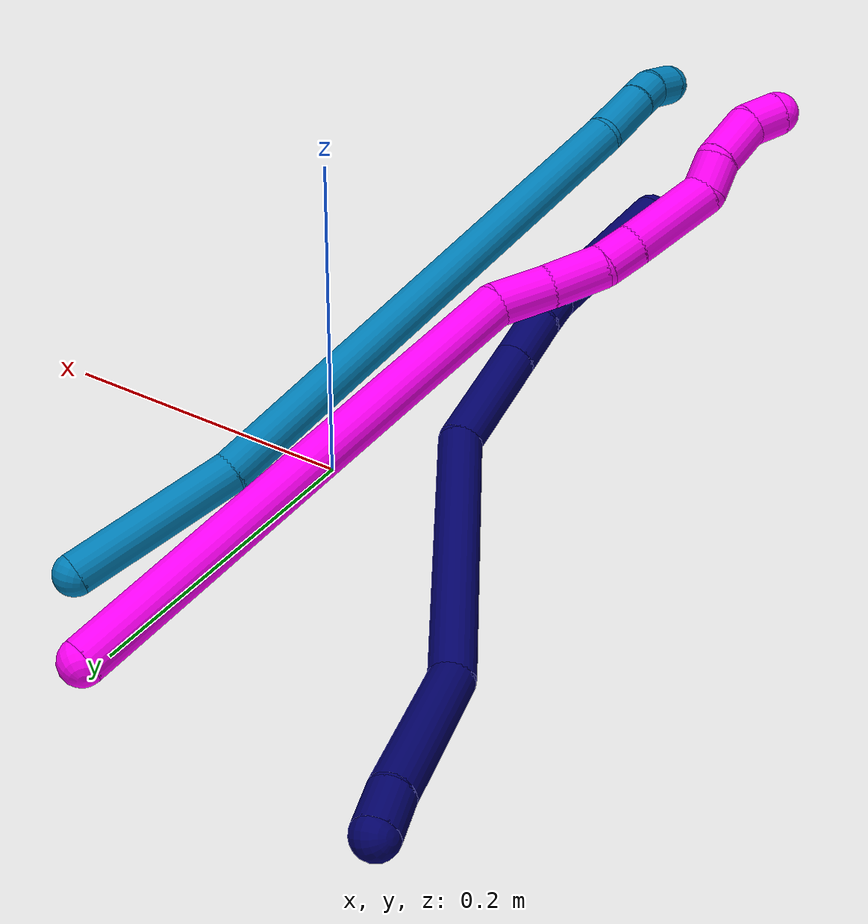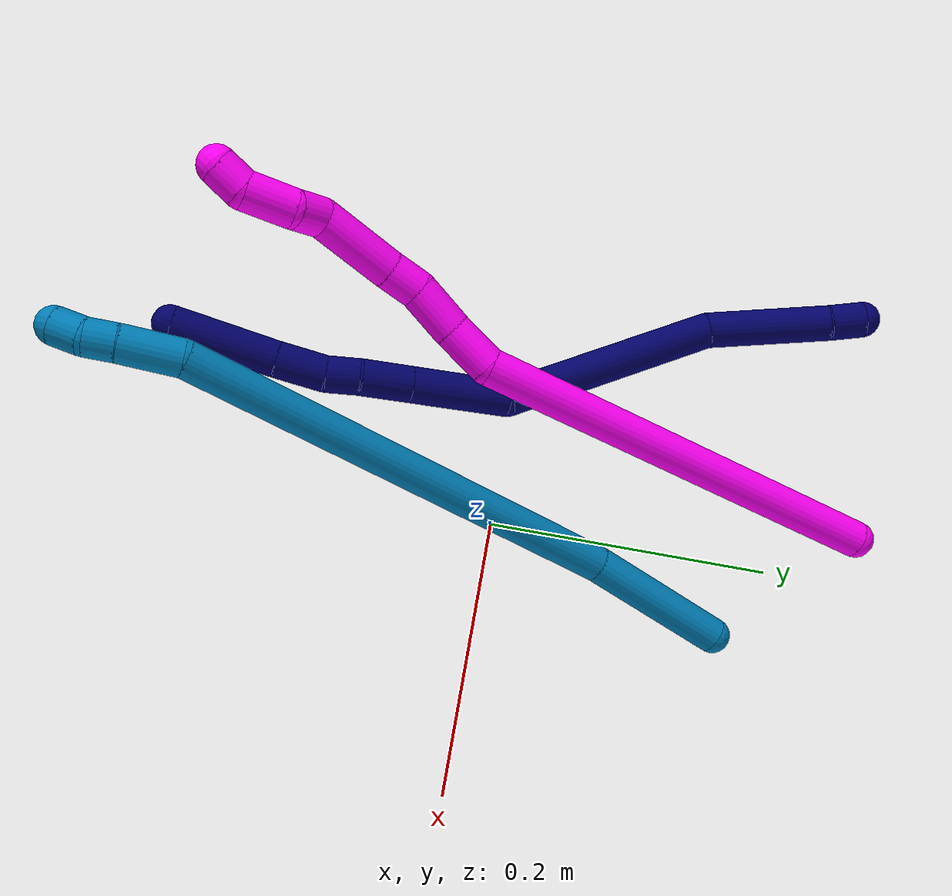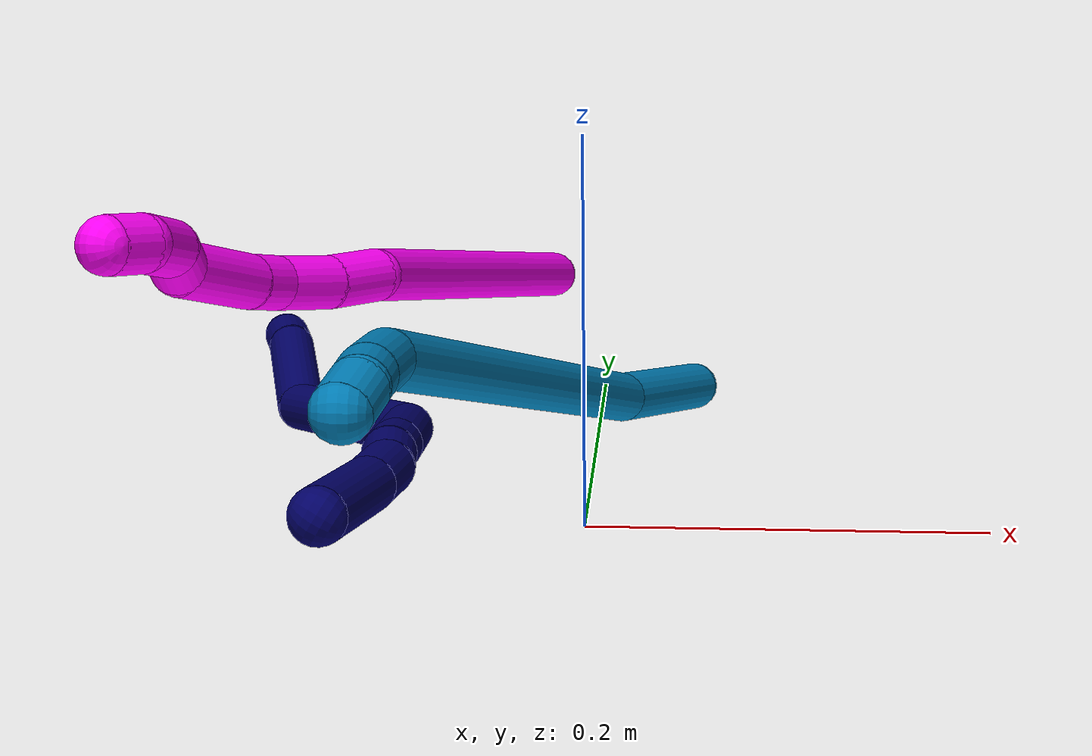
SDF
<sdf version="1.7">
 <world name="default">
  <model name="7">
   <static>0</static>
   <link name="7">
    <collision name="collision-cylinder-e_1_1_4">
     <pose>-0.002572 -0.01116 -0.00393 1.90938 -0.214044 -0.301165</pose>
     <geometry><cylinder><radius>0.0125</radius><length>0.024216</length></cylinder></geometry>
     <surface>
      <friction><ode><mu>1.16</mu><mu2>1.16</mu2><slip1>0</slip1><slip2>0</slip2></ode></friction>
      <contact><ode><kp>1e+06</kp><kd>1</kd><max_vel>0</max_vel><min_depth>0.001</min_depth></ode></contact>
     </surface>
    </collision>
    <visual name="visual-cylinder-e_1_1_4">
     <pose>-0.002572 -0.01116 -0.00393 1.90938 -0.214044 -0.301165</pose>
     <geometry><cylinder><radius>0.0125</radius><length>0.024216</length></cylinder></geometry>
     <material><ambient>0.003922 0 0.403922 1</ambient></material>
    </visual>
    <collision name="collision-cylinder-e_2_4_5">
     <pose>-0.019803 -0.06017 -0.022692 1.94428 -0.346087 -0.501665</pose>
     <geometry><cylinder><radius>0.0125</radius><length>0.086431</length></cylinder></geometry>
     <surface>
      <friction><ode><mu>1.16</mu><mu2>1.16</mu2><slip1>0</slip1><slip2>0</slip2></ode></friction>
      <contact><ode><kp>1e+06</kp><kd>1</kd><max_vel>0</max_vel><min_depth>0.001</min_depth></ode></contact>
     </surface>
    </collision>
    <visual name="visual-cylinder-e_2_4_5">
     <pose>-0.019803 -0.06017 -0.022692 1.94428 -0.346087 -0.501665</pose>
     <geometry><cylinder><radius>0.0125</radius><length>0.086431</length></cylinder></geometry>
     <material><ambient>0.003922 0 0.403922 1</ambient></material>
    </visual>
    <collision name="collision-cylinder-e_3_5_6">
     <pose>-0.027548 -0.170156 -0.068357 1.97471 0.087918 0.133077</pose>
     <geometry><cylinder><radius>0.0125</radius><length>0.157505</length></cylinder></geometry>
     <surface>
      <friction><ode><mu>1.16</mu><mu2>1.16</mu2><slip1>0</slip1><slip2>0</slip2></ode></friction>
      <contact><ode><kp>1e+06</kp><kd>1</kd><max_vel>0</max_vel><min_depth>0.001</min_depth></ode></contact>
     </surface>
    </collision>
    <visual name="visual-cylinder-e_3_5_6">
     <pose>-0.027548 -0.170156 -0.068357 1.97471 0.087918 0.133077</pose>
     <geometry><cylinder><radius>0.0125</radius><length>0.157505</length></cylinder></geometry>
     <material><ambient>0.003922 0 0.403922 1</ambient></material>
    </visual>
    <collision name="collision-cylinder-e_4_6_7">
     <pose>-0.026699 -0.275946 -0.100274 1.60306 -0.178251 -0.184064</pose>
     <geometry><cylinder><radius>0.0125</radius><length>0.068427</length></cylinder></geometry>
     <surface>
      <friction><ode><mu>1.16</mu><mu2>1.16</mu2><slip1>0</slip1><slip2>0</slip2></ode></friction>
      <contact><ode><kp>1e+06</kp><kd>1</kd><max_vel>0</max_vel><min_depth>0.001</min_depth></ode></contact>
     </surface>
    </collision>
    <visual name="visual-cylinder-e_4_6_7">
     <pose>-0.026699 -0.275946 -0.100274 1.60306 -0.178251 -0.184064</pose>
     <geometry><cylinder><radius>0.0125</radius><length>0.068427</length></cylinder></geometry>
     <material><ambient>0.003922 0 0.403922 1</ambient></material>
    </visual>
    <collision name="collision-cylinder-e_5_7_8">
     <pose>-0.035696 -0.326818 -0.101801 1.59636 -0.168528 -0.17287</pose>
     <geometry><cylinder><radius>0.0125</radius><length>0.034942</length></cylinder></geometry>
     <surface>
      <friction><ode><mu>1.16</mu><mu2>1.16</mu2><slip1>0</slip1><slip2>0</slip2></ode></friction>
      <contact><ode><kp>1e+06</kp><kd>1</kd><max_vel>0</max_vel><min_depth>0.001</min_depth></ode></contact>
     </surface>
    </collision>
    <visual name="visual-cylinder-e_5_7_8">
     <pose>-0.035696 -0.326818 -0.101801 1.59636 -0.168528 -0.17287</pose>
     <geometry><cylinder><radius>0.0125</radius><length>0.034942</length></cylinder></geometry>
     <material><ambient>0.003922 0 0.403922 1</ambient></material>
    </visual>
    <collision name="collision-cylinder-e_6_8_9">
     <pose>-0.041827 -0.354926 -0.103949 1.72633 -0.28251 -0.329462</pose>
     <geometry><cylinder><radius>0.0125</radius><length>0.022958</length></cylinder></geometry>
     <surface>
      <friction><ode><mu>1.16</mu><mu2>1.16</mu2><slip1>0</slip1><slip2>0</slip2></ode></friction>
      <contact><ode><kp>1e+06</kp><kd>1</kd><max_vel>0</max_vel><min_depth>0.001</min_depth></ode></contact>
     </surface>
    </collision>
    <visual name="visual-cylinder-e_6_8_9">
     <pose>-0.041827 -0.354926 -0.103949 1.72633 -0.28251 -0.329462</pose>
     <geometry><cylinder><radius>0.0125</radius><length>0.022958</length></cylinder></geometry>
     <material><ambient>0.003922 0 0.403922 1</ambient></material>
    </visual>
    <collision name="collision-cylinder-e_7_9_10">
     <pose>-0.050817 -0.381855 -0.104841 1.51998 -0.346048 -0.32921</pose>
     <geometry><cylinder><radius>0.0125</radius><length>0.034142</length></cylinder></geometry>
     <surface>
      <friction><ode><mu>1.16</mu><mu2>1.16</mu2><slip1>0</slip1><slip2>0</slip2></ode></friction>
      <contact><ode><kp>1e+06</kp><kd>1</kd><max_vel>0</max_vel><min_depth>0.001</min_depth></ode></contact>
     </surface>
    </collision>
    <visual name="visual-cylinder-e_7_9_10">
     <pose>-0.050817 -0.381855 -0.104841 1.51998 -0.346048 -0.32921</pose>
     <geometry><cylinder><radius>0.0125</radius><length>0.034142</length></cylinder></geometry>
     <material><ambient>0.003922 0 0.403922 1</ambient></material>
    </visual>
    <collision name="collision-cylinder-e_8_10_2">
     <pose>-0.067679 -0.431626 -0.100381 1.46319 -0.315441 -0.283656</pose>
     <geometry><cylinder><radius>0.0125</radius><length>0.07138</length></cylinder></geometry>
     <surface>
      <friction><ode><mu>1.16</mu><mu2>1.16</mu2><slip1>0</slip1><slip2>0</slip2></ode></friction>
      <contact><ode><kp>1e+06</kp><kd>1</kd><max_vel>0</max_vel><min_depth>0.001</min_depth></ode></contact>
     </surface>
    </collision>
    <visual name="visual-cylinder-e_8_10_2">
     <pose>-0.067679 -0.431626 -0.100381 1.46319 -0.315441 -0.283656</pose>
     <geometry><cylinder><radius>0.0125</radius><length>0.07138</length></cylinder></geometry>
     <material><ambient>0.003922 0 0.403922 1</ambient></material>
    </visual>
    <collision name="collision-sphere-2">
     <pose>-0.078751 -0.465359 -0.096737 0 -0 0</pose>
     <geometry><sphere><radius>0.0125</radius></sphere></geometry>
     <surface>
      <friction><ode><mu>1.16</mu><mu2>1.16</mu2><slip1>0</slip1><slip2>0</slip2></ode></friction>
      <contact><ode><kp>1e+06</kp><kd>1</kd><max_vel>0</max_vel><min_depth>0.001</min_depth></ode></contact>
     </surface>
    </collision>
    <visual name="visual-sphere-2">
     <pose>-0.078751 -0.465359 -0.096737 0 -0 0</pose>
     <geometry><sphere><radius>0.0125</radius></sphere></geometry>
     <material><ambient>0.003922 0 0.403922 1</ambient></material>
    </visual>
    <collision name="collision-sphere-10">
     <pose>-0.056607 -0.397894 -0.104025 0 -0 0</pose>
     <geometry><sphere><radius>0.0125</radius></sphere></geometry>
     <surface>
      <friction><ode><mu>1.16</mu><mu2>1.16</mu2><slip1>0</slip1><slip2>0</slip2></ode></friction>
      <contact><ode><kp>1e+06</kp><kd>1</kd><max_vel>0</max_vel><min_depth>0.001</min_depth></ode></contact>
     </surface>
    </collision>
    <visual name="visual-sphere-10">
     <pose>-0.056607 -0.397894 -0.104025 0 -0 0</pose>
     <geometry><sphere><radius>0.0125</radius></sphere></geometry>
     <material><ambient>0.003922 0 0.403922 1</ambient></material>
    </visual>
    <collision name="collision-sphere-9">
     <pose>-0.045027 -0.365817 -0.105656 0 -0 0</pose>
     <geometry><sphere><radius>0.0125</radius></sphere></geometry>
     <surface>
      <friction><ode><mu>1.16</mu><mu2>1.16</mu2><slip1>0</slip1><slip2>0</slip2></ode></friction>
      <contact><ode><kp>1e+06</kp><kd>1</kd><max_vel>0</max_vel><min_depth>0.001</min_depth></ode></contact>
     </surface>
    </collision>
    <visual name="visual-sphere-9">
     <pose>-0.045027 -0.365817 -0.105656 0 -0 0</pose>
     <geometry><sphere><radius>0.0125</radius></sphere></geometry>
     <material><ambient>0.003922 0 0.403922 1</ambient></material>
    </visual>
    <collision name="collision-sphere-4">
     <pose>-0.005144 -0.022319 -0.00786 0 -0 0</pose>
     <geometry><sphere><radius>0.0125</radius></sphere></geometry>
     <surface>
      <friction><ode><mu>1.16</mu><mu2>1.16</mu2><slip1>0</slip1><slip2>0</slip2></ode></friction>
      <contact><ode><kp>1e+06</kp><kd>1</kd><max_vel>0</max_vel><min_depth>0.001</min_depth></ode></contact>
     </surface>
    </collision>
    <visual name="visual-sphere-4">
     <pose>-0.005144 -0.022319 -0.00786 0 -0 0</pose>
     <geometry><sphere><radius>0.0125</radius></sphere></geometry>
     <material><ambient>0.003922 0 0.403922 1</ambient></material>
    </visual>
    <collision name="collision-sphere-1">
     <geometry><sphere><radius>0.0125</radius></sphere></geometry>
     <surface>
      <friction><ode><mu>1.16</mu><mu2>1.16</mu2><slip1>0</slip1><slip2>0</slip2></ode></friction>
      <contact><ode><kp>1e+06</kp><kd>1</kd><max_vel>0</max_vel><min_depth>0.001</min_depth></ode></contact>
     </surface>
    </collision>
    <visual name="visual-sphere-1">
     <geometry><sphere><radius>0.0125</radius></sphere></geometry>
     <material><ambient>0.003922 0 0.403922 1</ambient></material>
    </visual>
    <collision name="collision-sphere-8">
     <pose>-0.038627 -0.344036 -0.102241 0 -0 0</pose>
     <geometry><sphere><radius>0.0125</radius></sphere></geometry>
     <surface>
      <friction><ode><mu>1.16</mu><mu2>1.16</mu2><slip1>0</slip1><slip2>0</slip2></ode></friction>
      <contact><ode><kp>1e+06</kp><kd>1</kd><max_vel>0</max_vel><min_depth>0.001</min_depth></ode></contact>
     </surface>
    </collision>
    <visual name="visual-sphere-8">
     <pose>-0.038627 -0.344036 -0.102241 0 -0 0</pose>
     <geometry><sphere><radius>0.0125</radius></sphere></geometry>
     <material><ambient>0.003922 0 0.403922 1</ambient></material>
    </visual>
    <collision name="collision-sphere-5">
     <pose>-0.034463 -0.098021 -0.037525 0 -0 0</pose>
     <geometry><sphere><radius>0.0125</radius></sphere></geometry>
     <surface>
      <friction><ode><mu>1.16</mu><mu2>1.16</mu2><slip1>0</slip1><slip2>0</slip2></ode></friction>
      <contact><ode><kp>1e+06</kp><kd>1</kd><max_vel>0</max_vel><min_depth>0.001</min_depth></ode></contact>
     </surface>
    </collision>
    <visual name="visual-sphere-5">
     <pose>-0.034463 -0.098021 -0.037525 0 -0 0</pose>
     <geometry><sphere><radius>0.0125</radius></sphere></geometry>
     <material><ambient>0.003922 0 0.403922 1</ambient></material>
    </visual>
    <collision name="collision-sphere-6">
     <pose>-0.020633 -0.242292 -0.099188 0 -0 0</pose>
     <geometry><sphere><radius>0.0125</radius></sphere></geometry>
     <surface>
      <friction><ode><mu>1.16</mu><mu2>1.16</mu2><slip1>0</slip1><slip2>0</slip2></ode></friction>
      <contact><ode><kp>1e+06</kp><kd>1</kd><max_vel>0</max_vel><min_depth>0.001</min_depth></ode></contact>
     </surface>
    </collision>
    <visual name="visual-sphere-6">
     <pose>-0.020633 -0.242292 -0.099188 0 -0 0</pose>
     <geometry><sphere><radius>0.0125</radius></sphere></geometry>
     <material><ambient>0.003922 0 0.403922 1</ambient></material>
    </visual>
    <collision name="collision-sphere-7">
     <pose>-0.032766 -0.3096 -0.101361 0 -0 0</pose>
     <geometry><sphere><radius>0.0125</radius></sphere></geometry>
     <surface>
      <friction><ode><mu>1.16</mu><mu2>1.16</mu2><slip1>0</slip1><slip2>0</slip2></ode></friction>
      <contact><ode><kp>1e+06</kp><kd>1</kd><max_vel>0</max_vel><min_depth>0.001</min_depth></ode></contact>
     </surface>
    </collision>
    <visual name="visual-sphere-7">
     <pose>-0.032766 -0.3096 -0.101361 0 -0 0</pose>
     <geometry><sphere><radius>0.0125</radius></sphere></geometry>
     <material><ambient>0.003922 0 0.403922 1</ambient></material>
    </visual>
    <inertial>
     <pose>-0.033426 -0.229136 -0.072745 0 -0 0</pose>
     <mass>0.5</mass>
     <inertia>
      <ixx>0.00044</ixx>
      <ixy>0</ixy>
      <ixz>0</ixz>
      <iyy>-0.000165</iyy>
      <iyz>0</iyz>
      <izz>0.000429</izz>
     </inertia>
    </inertial>
   </link>
   <pose>-0.189393 0.235103 0.015035 -0.700652 -0.858649 0.696439</pose>
  </model>
  <model name="9">
   <static>0</static>
   <link name="9">
    <collision name="collision-cylinder-e_1_1_4">
     <pose>-0.028452 -0.038121 0.019203 1.10416 -0.587931 -0.368718</pose>
     <geometry><cylinder><radius>0.0125</radius><length>0.102595</length></cylinder></geometry>
     <surface>
      <friction><ode><mu>1.16</mu><mu2>1.16</mu2><slip1>0</slip1><slip2>0</slip2></ode></friction>
      <contact><ode><kp>1e+06</kp><kd>1</kd><max_vel>0</max_vel><min_depth>0.001</min_depth></ode></contact>
     </surface>
    </collision>
    <visual name="visual-cylinder-e_1_1_4">
     <pose>-0.028452 -0.038121 0.019203 1.10416 -0.587931 -0.368718</pose>
     <geometry><cylinder><radius>0.0125</radius><length>0.102595</length></cylinder></geometry>
     <material><ambient>0 0.490196 0.709804 1</ambient></material>
    </visual>
    <collision name="collision-cylinder-e_2_4_5">
     <pose>-0.132716 -0.20806 0.082506 1.24795 -0.499314 -0.363086</pose>
     <geometry><cylinder><radius>0.0125</radius><length>0.31666</length></cylinder></geometry>
     <surface>
      <friction><ode><mu>1.16</mu><mu2>1.16</mu2><slip1>0</slip1><slip2>0</slip2></ode></friction>
      <contact><ode><kp>1e+06</kp><kd>1</kd><max_vel>0</max_vel><min_depth>0.001</min_depth></ode></contact>
     </surface>
    </collision>
    <visual name="visual-cylinder-e_2_4_5">
     <pose>-0.132716 -0.20806 0.082506 1.24795 -0.499314 -0.363086</pose>
     <geometry><cylinder><radius>0.0125</radius><length>0.31666</length></cylinder></geometry>
     <material><ambient>0 0.490196 0.709804 1</ambient></material>
    </visual>
    <collision name="collision-cylinder-e_3_5_6">
     <pose>-0.222083 -0.354976 0.127815 1.49095 -0.730034 -0.678308</pose>
     <geometry><cylinder><radius>0.0125</radius><length>0.040652</length></cylinder></geometry>
     <surface>
      <friction><ode><mu>1.16</mu><mu2>1.16</mu2><slip1>0</slip1><slip2>0</slip2></ode></friction>
      <contact><ode><kp>1e+06</kp><kd>1</kd><max_vel>0</max_vel><min_depth>0.001</min_depth></ode></contact>
     </surface>
    </collision>
    <visual name="visual-cylinder-e_3_5_6">
     <pose>-0.222083 -0.354976 0.127815 1.49095 -0.730034 -0.678308</pose>
     <geometry><cylinder><radius>0.0125</radius><length>0.040652</length></cylinder></geometry>
     <material><ambient>0 0.490196 0.709804 1</ambient></material>
    </visual>
    <collision name="collision-cylinder-e_4_6_7">
     <pose>-0.242838 -0.37702 0.129262 1.53636 -0.803021 -0.778539</pose>
     <geometry><cylinder><radius>0.0125</radius><length>0.020013</length></cylinder></geometry>
     <surface>
      <friction><ode><mu>1.16</mu><mu2>1.16</mu2><slip1>0</slip1><slip2>0</slip2></ode></friction>
      <contact><ode><kp>1e+06</kp><kd>1</kd><max_vel>0</max_vel><min_depth>0.001</min_depth></ode></contact>
     </surface>
    </collision>
    <visual name="visual-cylinder-e_4_6_7">
     <pose>-0.242838 -0.37702 0.129262 1.53636 -0.803021 -0.778539</pose>
     <geometry><cylinder><radius>0.0125</radius><length>0.020013</length></cylinder></geometry>
     <material><ambient>0 0.490196 0.709804 1</ambient></material>
    </visual>
    <collision name="collision-cylinder-e_5_7_2">
     <pose>-0.258669 -0.388653 0.131577 1.154 -1.03484 -0.70955</pose>
     <geometry><cylinder><radius>0.0125</radius><length>0.020079</length></cylinder></geometry>
     <surface>
      <friction><ode><mu>1.16</mu><mu2>1.16</mu2><slip1>0</slip1><slip2>0</slip2></ode></friction>
      <contact><ode><kp>1e+06</kp><kd>1</kd><max_vel>0</max_vel><min_depth>0.001</min_depth></ode></contact>
     </surface>
    </collision>
    <visual name="visual-cylinder-e_5_7_2">
     <pose>-0.258669 -0.388653 0.131577 1.154 -1.03484 -0.70955</pose>
     <geometry><cylinder><radius>0.0125</radius><length>0.020079</length></cylinder></geometry>
     <material><ambient>0 0.490196 0.709804 1</ambient></material>
    </visual>
    <collision name="collision-sphere-2">
     <pose>-0.267301 -0.393341 0.133652 0 -0 0</pose>
     <geometry><sphere><radius>0.0125</radius></sphere></geometry>
     <surface>
      <friction><ode><mu>1.16</mu><mu2>1.16</mu2><slip1>0</slip1><slip2>0</slip2></ode></friction>
      <contact><ode><kp>1e+06</kp><kd>1</kd><max_vel>0</max_vel><min_depth>0.001</min_depth></ode></contact>
     </surface>
    </collision>
    <visual name="visual-sphere-2">
     <pose>-0.267301 -0.393341 0.133652 0 -0 0</pose>
     <geometry><sphere><radius>0.0125</radius></sphere></geometry>
     <material><ambient>0 0.490196 0.709804 1</ambient></material>
    </visual>
    <collision name="collision-sphere-7">
     <pose>-0.250037 -0.383965 0.129501 0 -0 0</pose>
     <geometry><sphere><radius>0.0125</radius></sphere></geometry>
     <surface>
      <friction><ode><mu>1.16</mu><mu2>1.16</mu2><slip1>0</slip1><slip2>0</slip2></ode></friction>
      <contact><ode><kp>1e+06</kp><kd>1</kd><max_vel>0</max_vel><min_depth>0.001</min_depth></ode></contact>
     </surface>
    </collision>
    <visual name="visual-sphere-7">
     <pose>-0.250037 -0.383965 0.129501 0 -0 0</pose>
     <geometry><sphere><radius>0.0125</radius></sphere></geometry>
     <material><ambient>0 0.490196 0.709804 1</ambient></material>
    </visual>
    <collision name="collision-sphere-6">
     <pose>-0.235638 -0.370074 0.129023 0 -0 0</pose>
     <geometry><sphere><radius>0.0125</radius></sphere></geometry>
     <surface>
      <friction><ode><mu>1.16</mu><mu2>1.16</mu2><slip1>0</slip1><slip2>0</slip2></ode></friction>
      <contact><ode><kp>1e+06</kp><kd>1</kd><max_vel>0</max_vel><min_depth>0.001</min_depth></ode></contact>
     </surface>
    </collision>
    <visual name="visual-sphere-6">
     <pose>-0.235638 -0.370074 0.129023 0 -0 0</pose>
     <geometry><sphere><radius>0.0125</radius></sphere></geometry>
     <material><ambient>0 0.490196 0.709804 1</ambient></material>
    </visual>
    <collision name="collision-sphere-5">
     <pose>-0.208528 -0.339878 0.126607 0 -0 0</pose>
     <geometry><sphere><radius>0.0125</radius></sphere></geometry>
     <surface>
      <friction><ode><mu>1.16</mu><mu2>1.16</mu2><slip1>0</slip1><slip2>0</slip2></ode></friction>
      <contact><ode><kp>1e+06</kp><kd>1</kd><max_vel>0</max_vel><min_depth>0.001</min_depth></ode></contact>
     </surface>
    </collision>
    <visual name="visual-sphere-5">
     <pose>-0.208528 -0.339878 0.126607 0 -0 0</pose>
     <geometry><sphere><radius>0.0125</radius></sphere></geometry>
     <material><ambient>0 0.490196 0.709804 1</ambient></material>
    </visual>
    <collision name="collision-sphere-1">
     <geometry><sphere><radius>0.0125</radius></sphere></geometry>
     <surface>
      <friction><ode><mu>1.16</mu><mu2>1.16</mu2><slip1>0</slip1><slip2>0</slip2></ode></friction>
      <contact><ode><kp>1e+06</kp><kd>1</kd><max_vel>0</max_vel><min_depth>0.001</min_depth></ode></contact>
     </surface>
    </collision>
    <visual name="visual-sphere-1">
     <geometry><sphere><radius>0.0125</radius></sphere></geometry>
     <material><ambient>0 0.490196 0.709804 1</ambient></material>
    </visual>
    <collision name="collision-sphere-4">
     <pose>-0.056903 -0.076241 0.038406 0 -0 0</pose>
     <geometry><sphere><radius>0.0125</radius></sphere></geometry>
     <surface>
      <friction><ode><mu>1.16</mu><mu2>1.16</mu2><slip1>0</slip1><slip2>0</slip2></ode></friction>
      <contact><ode><kp>1e+06</kp><kd>1</kd><max_vel>0</max_vel><min_depth>0.001</min_depth></ode></contact>
     </surface>
    </collision>
    <visual name="visual-sphere-4">
     <pose>-0.056903 -0.076241 0.038406 0 -0 0</pose>
     <geometry><sphere><radius>0.0125</radius></sphere></geometry>
     <material><ambient>0 0.490196 0.709804 1</ambient></material>
    </visual>
    <inertial>
     <pose>-0.128054 -0.19915 0.077043 0 -0 0</pose>
     <mass>0.5</mass>
     <inertia>
      <ixx>0.001378</ixx>
      <ixy>0</ixy>
      <ixz>0</ixz>
      <iyy>0.000386</iyy>
      <iyz>0</iyz>
      <izz>0.003633</izz>
     </inertia>
    </inertial>
   </link>
   <pose>0.050802 0.169793 0.01149 -1.55498 -0.640724 1.58157</pose>
  </model>
  <model name="10">
   <static>0</static>
   <link name="10">
    <collision name="collision-cylinder-e_1_1_4">
     <pose>-0.002345 -0.124272 -0.07312 2.10263 -0.01626 -0.028431</pose>
     <geometry><cylinder><radius>0.0125</radius><length>0.288413</length></cylinder></geometry>
     <surface>
      <friction><ode><mu>1.16</mu><mu2>1.16</mu2><slip1>0</slip1><slip2>0</slip2></ode></friction>
      <contact><ode><kp>1e+06</kp><kd>1</kd><max_vel>0</max_vel><min_depth>0.001</min_depth></ode></contact>
     </surface>
    </collision>
    <visual name="visual-cylinder-e_1_1_4">
     <pose>-0.002345 -0.124272 -0.07312 2.10263 -0.01626 -0.028431</pose>
     <geometry><cylinder><radius>0.0125</radius><length>0.288413</length></cylinder></geometry>
     <material><ambient>1 0 0.964706 1</ambient></material>
    </visual>
    <collision name="collision-cylinder-e_2_4_5">
     <pose>-0.006958 -0.264348 -0.148684 1.72429 -0.140933 -0.164314</pose>
     <geometry><cylinder><radius>0.0125</radius><length>0.032303</length></cylinder></geometry>
     <surface>
      <friction><ode><mu>1.16</mu><mu2>1.16</mu2><slip1>0</slip1><slip2>0</slip2></ode></friction>
      <contact><ode><kp>1e+06</kp><kd>1</kd><max_vel>0</max_vel><min_depth>0.001</min_depth></ode></contact>
     </surface>
    </collision>
    <visual name="visual-cylinder-e_2_4_5">
     <pose>-0.006958 -0.264348 -0.148684 1.72429 -0.140933 -0.164314</pose>
     <geometry><cylinder><radius>0.0125</radius><length>0.032303</length></cylinder></geometry>
     <material><ambient>1 0 0.964706 1</ambient></material>
    </visual>
    <collision name="collision-cylinder-e_3_5_6">
     <pose>-0.009945 -0.296306 -0.152937 1.68223 -0.044128 -0.049339</pose>
     <geometry><cylinder><radius>0.0125</radius><length>0.032542</length></cylinder></geometry>
     <surface>
      <friction><ode><mu>1.16</mu><mu2>1.16</mu2><slip1>0</slip1><slip2>0</slip2></ode></friction>
      <contact><ode><kp>1e+06</kp><kd>1</kd><max_vel>0</max_vel><min_depth>0.001</min_depth></ode></contact>
     </surface>
    </collision>
    <visual name="visual-cylinder-e_3_5_6">
     <pose>-0.009945 -0.296306 -0.152937 1.68223 -0.044128 -0.049339</pose>
     <geometry><cylinder><radius>0.0125</radius><length>0.032542</length></cylinder></geometry>
     <material><ambient>1 0 0.964706 1</ambient></material>
    </visual>
    <collision name="collision-cylinder-e_4_6_7">
     <pose>-0.010629 -0.32284 -0.158775 1.94122 0.003007 0.004394</pose>
     <geometry><cylinder><radius>0.0125</radius><length>0.022271</length></cylinder></geometry>
     <surface>
      <friction><ode><mu>1.16</mu><mu2>1.16</mu2><slip1>0</slip1><slip2>0</slip2></ode></friction>
      <contact><ode><kp>1e+06</kp><kd>1</kd><max_vel>0</max_vel><min_depth>0.001</min_depth></ode></contact>
     </surface>
    </collision>
    <visual name="visual-cylinder-e_4_6_7">
     <pose>-0.010629 -0.32284 -0.158775 1.94122 0.003007 0.004394</pose>
     <geometry><cylinder><radius>0.0125</radius><length>0.022271</length></cylinder></geometry>
     <material><ambient>1 0 0.964706 1</ambient></material>
    </visual>
    <collision name="collision-cylinder-e_5_7_8">
     <pose>-0.008374 -0.357635 -0.171434 1.91046 0.085597 0.120957</pose>
     <geometry><cylinder><radius>0.0125</radius><length>0.051978</length></cylinder></geometry>
     <surface>
      <friction><ode><mu>1.16</mu><mu2>1.16</mu2><slip1>0</slip1><slip2>0</slip2></ode></friction>
      <contact><ode><kp>1e+06</kp><kd>1</kd><max_vel>0</max_vel><min_depth>0.001</min_depth></ode></contact>
     </surface>
    </collision>
    <visual name="visual-cylinder-e_5_7_8">
     <pose>-0.008374 -0.357635 -0.171434 1.91046 0.085597 0.120957</pose>
     <geometry><cylinder><radius>0.0125</radius><length>0.051978</length></cylinder></geometry>
     <material><ambient>1 0 0.964706 1</ambient></material>
    </visual>
    <collision name="collision-cylinder-e_6_8_9">
     <pose>-0.002031 -0.388868 -0.186501 2.32769 0.413932 0.906656</pose>
     <geometry><cylinder><radius>0.0125</radius><length>0.020489</length></cylinder></geometry>
     <surface>
      <friction><ode><mu>1.16</mu><mu2>1.16</mu2><slip1>0</slip1><slip2>0</slip2></ode></friction>
      <contact><ode><kp>1e+06</kp><kd>1</kd><max_vel>0</max_vel><min_depth>0.001</min_depth></ode></contact>
     </surface>
    </collision>
    <visual name="visual-cylinder-e_6_8_9">
     <pose>-0.002031 -0.388868 -0.186501 2.32769 0.413932 0.906656</pose>
     <geometry><cylinder><radius>0.0125</radius><length>0.020489</length></cylinder></geometry>
     <material><ambient>1 0 0.964706 1</ambient></material>
    </visual>
    <collision name="collision-cylinder-e_7_9_10">
     <pose>0.002828 -0.408555 -0.202381 2.20366 0.046282 0.091299</pose>
     <geometry><cylinder><radius>0.0125</radius><length>0.031952</length></cylinder></geometry>
     <surface>
      <friction><ode><mu>1.16</mu><mu2>1.16</mu2><slip1>0</slip1><slip2>0</slip2></ode></friction>
      <contact><ode><kp>1e+06</kp><kd>1</kd><max_vel>0</max_vel><min_depth>0.001</min_depth></ode></contact>
     </surface>
    </collision>
    <visual name="visual-cylinder-e_7_9_10">
     <pose>0.002828 -0.408555 -0.202381 2.20366 0.046282 0.091299</pose>
     <geometry><cylinder><radius>0.0125</radius><length>0.031952</length></cylinder></geometry>
     <material><ambient>1 0 0.964706 1</ambient></material>
    </visual>
    <collision name="collision-cylinder-e_8_10_2">
     <pose>0.002711 -0.431223 -0.213751 1.76531 -0.085589 -0.104065</pose>
     <geometry><cylinder><radius>0.0125</radius><length>0.020051</length></cylinder></geometry>
     <surface>
      <friction><ode><mu>1.16</mu><mu2>1.16</mu2><slip1>0</slip1><slip2>0</slip2></ode></friction>
      <contact><ode><kp>1e+06</kp><kd>1</kd><max_vel>0</max_vel><min_depth>0.001</min_depth></ode></contact>
     </surface>
    </collision>
    <visual name="visual-cylinder-e_8_10_2">
     <pose>0.002711 -0.431223 -0.213751 1.76531 -0.085589 -0.104065</pose>
     <geometry><cylinder><radius>0.0125</radius><length>0.020051</length></cylinder></geometry>
     <material><ambient>1 0 0.964706 1</ambient></material>
    </visual>
    <collision name="collision-sphere-2">
     <pose>0.001854 -0.441024 -0.215681 0 -0 0</pose>
     <geometry><sphere><radius>0.0125</radius></sphere></geometry>
     <surface>
      <friction><ode><mu>1.16</mu><mu2>1.16</mu2><slip1>0</slip1><slip2>0</slip2></ode></friction>
      <contact><ode><kp>1e+06</kp><kd>1</kd><max_vel>0</max_vel><min_depth>0.001</min_depth></ode></contact>
     </surface>
    </collision>
    <visual name="visual-sphere-2">
     <pose>0.001854 -0.441024 -0.215681 0 -0 0</pose>
     <geometry><sphere><radius>0.0125</radius></sphere></geometry>
     <material><ambient>1 0 0.964706 1</ambient></material>
    </visual>
    <collision name="collision-sphere-10">
     <pose>0.003568 -0.421423 -0.21182 0 -0 0</pose>
     <geometry><sphere><radius>0.0125</radius></sphere></geometry>
     <surface>
      <friction><ode><mu>1.16</mu><mu2>1.16</mu2><slip1>0</slip1><slip2>0</slip2></ode></friction>
      <contact><ode><kp>1e+06</kp><kd>1</kd><max_vel>0</max_vel><min_depth>0.001</min_depth></ode></contact>
     </surface>
    </collision>
    <visual name="visual-sphere-10">
     <pose>0.003568 -0.421423 -0.21182 0 -0 0</pose>
     <geometry><sphere><radius>0.0125</radius></sphere></geometry>
     <material><ambient>1 0 0.964706 1</ambient></material>
    </visual>
    <collision name="collision-sphere-9">
     <pose>0.002089 -0.395686 -0.192942 0 -0 0</pose>
     <geometry><sphere><radius>0.0125</radius></sphere></geometry>
     <surface>
      <friction><ode><mu>1.16</mu><mu2>1.16</mu2><slip1>0</slip1><slip2>0</slip2></ode></friction>
      <contact><ode><kp>1e+06</kp><kd>1</kd><max_vel>0</max_vel><min_depth>0.001</min_depth></ode></contact>
     </surface>
    </collision>
    <visual name="visual-sphere-9">
     <pose>0.002089 -0.395686 -0.192942 0 -0 0</pose>
     <geometry><sphere><radius>0.0125</radius></sphere></geometry>
     <material><ambient>1 0 0.964706 1</ambient></material>
    </visual>
    <collision name="collision-sphere-4">
     <pose>-0.004689 -0.248544 -0.146239 0 -0 0</pose>
     <geometry><sphere><radius>0.0125</radius></sphere></geometry>
     <surface>
      <friction><ode><mu>1.16</mu><mu2>1.16</mu2><slip1>0</slip1><slip2>0</slip2></ode></friction>
      <contact><ode><kp>1e+06</kp><kd>1</kd><max_vel>0</max_vel><min_depth>0.001</min_depth></ode></contact>
     </surface>
    </collision>
    <visual name="visual-sphere-4">
     <pose>-0.004689 -0.248544 -0.146239 0 -0 0</pose>
     <geometry><sphere><radius>0.0125</radius></sphere></geometry>
     <material><ambient>1 0 0.964706 1</ambient></material>
    </visual>
    <collision name="collision-sphere-1">
     <geometry><sphere><radius>0.0125</radius></sphere></geometry>
     <surface>
      <friction><ode><mu>1.16</mu><mu2>1.16</mu2><slip1>0</slip1><slip2>0</slip2></ode></friction>
      <contact><ode><kp>1e+06</kp><kd>1</kd><max_vel>0</max_vel><min_depth>0.001</min_depth></ode></contact>
     </surface>
    </collision>
    <visual name="visual-sphere-1">
     <geometry><sphere><radius>0.0125</radius></sphere></geometry>
     <material><ambient>1 0 0.964706 1</ambient></material>
    </visual>
    <collision name="collision-sphere-8">
     <pose>-0.006152 -0.382049 -0.180061 0 -0 0</pose>
     <geometry><sphere><radius>0.0125</radius></sphere></geometry>
     <surface>
      <friction><ode><mu>1.16</mu><mu2>1.16</mu2><slip1>0</slip1><slip2>0</slip2></ode></friction>
      <contact><ode><kp>1e+06</kp><kd>1</kd><max_vel>0</max_vel><min_depth>0.001</min_depth></ode></contact>
     </surface>
    </collision>
    <visual name="visual-sphere-8">
     <pose>-0.006152 -0.382049 -0.180061 0 -0 0</pose>
     <geometry><sphere><radius>0.0125</radius></sphere></geometry>
     <material><ambient>1 0 0.964706 1</ambient></material>
    </visual>
    <collision name="collision-sphere-5">
     <pose>-0.009227 -0.280152 -0.151129 0 -0 0</pose>
     <geometry><sphere><radius>0.0125</radius></sphere></geometry>
     <surface>
      <friction><ode><mu>1.16</mu><mu2>1.16</mu2><slip1>0</slip1><slip2>0</slip2></ode></friction>
      <contact><ode><kp>1e+06</kp><kd>1</kd><max_vel>0</max_vel><min_depth>0.001</min_depth></ode></contact>
     </surface>
    </collision>
    <visual name="visual-sphere-5">
     <pose>-0.009227 -0.280152 -0.151129 0 -0 0</pose>
     <geometry><sphere><radius>0.0125</radius></sphere></geometry>
     <material><ambient>1 0 0.964706 1</ambient></material>
    </visual>
    <collision name="collision-sphere-6">
     <pose>-0.010662 -0.31246 -0.154744 0 -0 0</pose>
     <geometry><sphere><radius>0.0125</radius></sphere></geometry>
     <surface>
      <friction><ode><mu>1.16</mu><mu2>1.16</mu2><slip1>0</slip1><slip2>0</slip2></ode></friction>
      <contact><ode><kp>1e+06</kp><kd>1</kd><max_vel>0</max_vel><min_depth>0.001</min_depth></ode></contact>
     </surface>
    </collision>
    <visual name="visual-sphere-6">
     <pose>-0.010662 -0.31246 -0.154744 0 -0 0</pose>
     <geometry><sphere><radius>0.0125</radius></sphere></geometry>
     <material><ambient>1 0 0.964706 1</ambient></material>
    </visual>
    <collision name="collision-sphere-7">
     <pose>-0.010595 -0.333221 -0.162807 0 -0 0</pose>
     <geometry><sphere><radius>0.0125</radius></sphere></geometry>
     <surface>
      <friction><ode><mu>1.16</mu><mu2>1.16</mu2><slip1>0</slip1><slip2>0</slip2></ode></friction>
      <contact><ode><kp>1e+06</kp><kd>1</kd><max_vel>0</max_vel><min_depth>0.001</min_depth></ode></contact>
     </surface>
    </collision>
    <visual name="visual-sphere-7">
     <pose>-0.010595 -0.333221 -0.162807 0 -0 0</pose>
     <geometry><sphere><radius>0.0125</radius></sphere></geometry>
     <material><ambient>1 0 0.964706 1</ambient></material>
    </visual>
    <inertial>
     <pose>-0.003587 -0.218942 -0.115778 0 -0 0</pose>
     <mass>0.5</mass>
     <inertia>
      <ixx>0.001984</ixx>
      <ixy>0</ixy>
      <ixz>0</ixz>
      <iyy>-0.001117</iyy>
      <iyz>0</iyz>
      <izz>0.001776</izz>
     </inertia>
    </inertial>
   </link>
   <pose>-0.033101 0.249079 0.05006 -2.19315 -1.2518 1.43149</pose>
  </model>
 </world>
</sdf>
